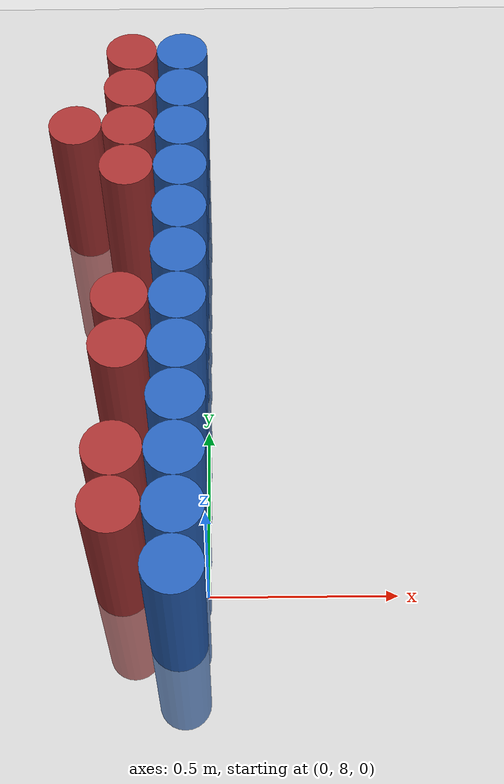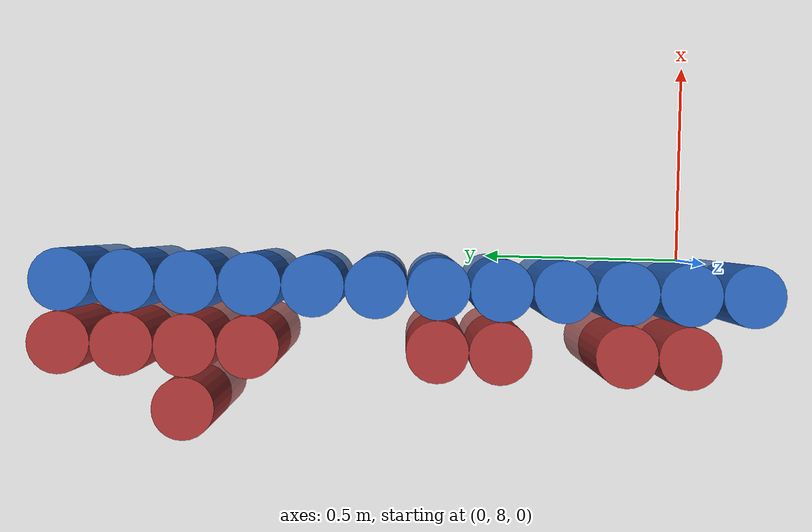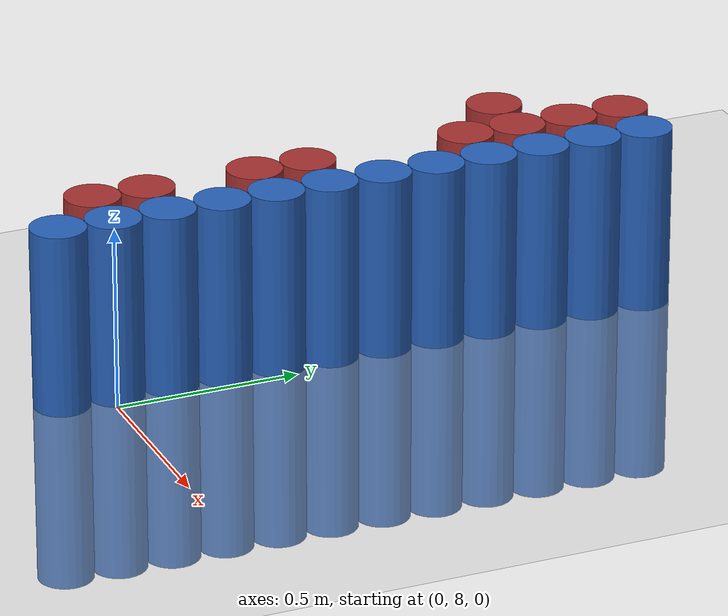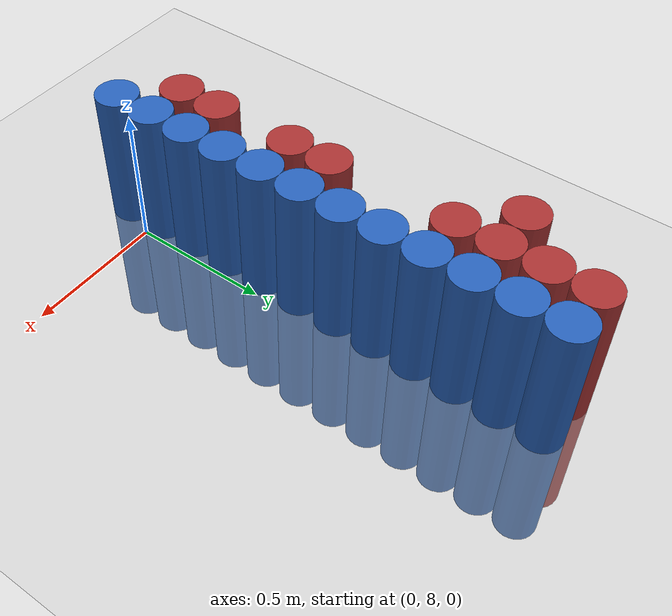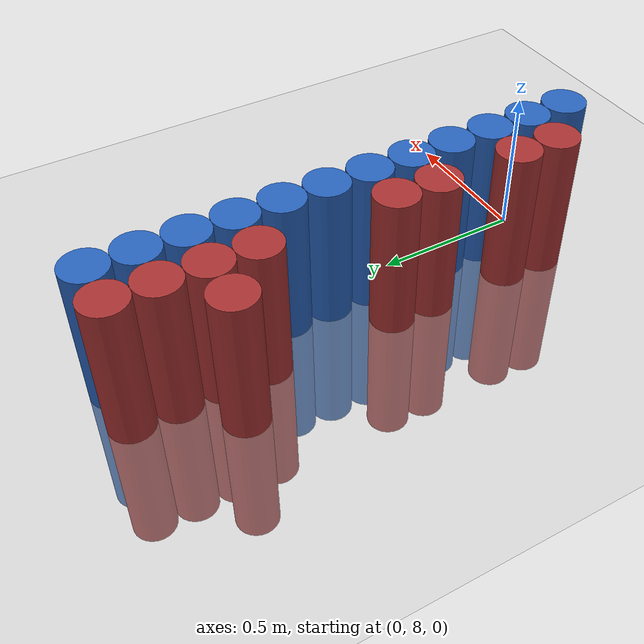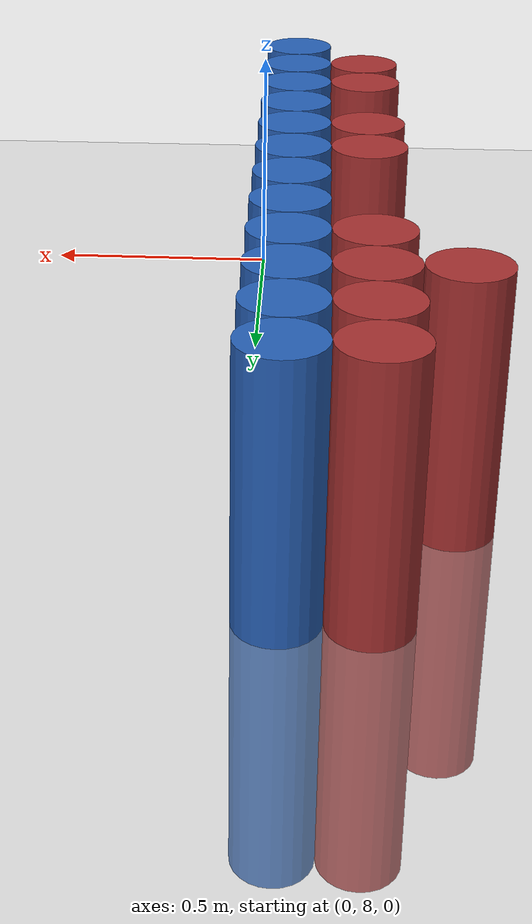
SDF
<sdf version="1.6">
 <world name="default">
  <model name="ground_plane">
   <static>1</static>
   <link name="link">
    <collision name="collision">
     <geometry><plane><normal>0 0 1</normal><size>100 100</size></plane></geometry>
     <surface><friction><ode><mu>100</mu><mu2>50</mu2></ode></friction></surface>
    </collision>
    <visual name="visual">
     <cast_shadows>0</cast_shadows>
     <geometry><plane><normal>0 0 1</normal><size>100 100</size></plane></geometry>
     <material>
      <script><uri>file://media/materials/scripts/gazebo.material</uri><name>Gazebo/Grey</name></script>
     </material>
    </visual>
   </link>
  </model>
  <model name="unit_cylinder_275">
   <static>1</static>
   <pose>-0.375000 9.225000 0.000000 0.000000 0.000000 0.000000</pose>
   <link name="link">
    <inertial>
     <mass>1</mass>
     <inertia><ixx>0.145833</ixx><ixy>0</ixy><ixz>0</ixz><iyy>0.145833</iyy><iyz>0</iyz><izz>0.125</izz></inertia>
    </inertial>
    <collision name="collision">
     <geometry><cylinder><radius>0.075000</radius><length>1</length></cylinder></geometry>
    </collision>
    <visual name="visual">
     <geometry><cylinder><radius>0.075000</radius><length>1</length></cylinder></geometry>
     <material>
      <ambient>0.648000 0.192000 0.192000 1</ambient>
      <diffuse>0.648000 0.192000 0.192000 1</diffuse>
     </material>
     <material>
      <script><name>Gazebo/Grey</name><uri>file://media/materials/scripts/gazebo.material</uri></script>
     </material>
    </visual>
    <sensor name="sensor_contact" type="contact"><contact><collision>collision</collision></contact></sensor>
   </link>
   <plugin filename="gz-sim-touchplugin-system" name="gz::sim::systems::TouchPlugin">
    <target>robot</target>
    <namespace>robot</namespace>
    <time>0.001</time>
    <enabled>true</enabled>
   </plugin>
  </model>
  <model name="unit_cylinder_287">
   <static>1</static>
   <pose>-0.225000 8.025000 0.000000 0.000000 0.000000 0.000000</pose>
   <link name="link">
    <inertial>
     <mass>1</mass>
     <inertia><ixx>0.145833</ixx><ixy>0</ixy><ixz>0</ixz><iyy>0.145833</iyy><iyz>0</iyz><izz>0.125</izz></inertia>
    </inertial>
    <collision name="collision">
     <geometry><cylinder><radius>0.075000</radius><length>1</length></cylinder></geometry>
    </collision>
    <visual name="visual">
     <geometry><cylinder><radius>0.075000</radius><length>1</length></cylinder></geometry>
     <material>
      <ambient>0.648000 0.192000 0.192000 1</ambient>
      <diffuse>0.648000 0.192000 0.192000 1</diffuse>
     </material>
     <material>
      <script><name>Gazebo/Grey</name><uri>file://media/materials/scripts/gazebo.material</uri></script>
     </material>
    </visual>
    <sensor name="sensor_contact" type="contact"><contact><collision>collision</collision></contact></sensor>
   </link>
   <plugin filename="gz-sim-touchplugin-system" name="gz::sim::systems::TouchPlugin">
    <target>robot</target>
    <namespace>robot</namespace>
    <time>0.001</time>
    <enabled>true</enabled>
   </plugin>
  </model>
  <model name="unit_cylinder_288">
   <static>1</static>
   <pose>-0.225000 8.175000 0.000000 0.000000 0.000000 0.000000</pose>
   <link name="link">
    <inertial>
     <mass>1</mass>
     <inertia><ixx>0.145833</ixx><ixy>0</ixy><ixz>0</ixz><iyy>0.145833</iyy><iyz>0</iyz><izz>0.125</izz></inertia>
    </inertial>
    <collision name="collision">
     <geometry><cylinder><radius>0.075000</radius><length>1</length></cylinder></geometry>
    </collision>
    <visual name="visual">
     <geometry><cylinder><radius>0.075000</radius><length>1</length></cylinder></geometry>
     <material>
      <ambient>0.648000 0.192000 0.192000 1</ambient>
      <diffuse>0.648000 0.192000 0.192000 1</diffuse>
     </material>
     <material>
      <script><name>Gazebo/Grey</name><uri>file://media/materials/scripts/gazebo.material</uri></script>
     </material>
    </visual>
    <sensor name="sensor_contact" type="contact"><contact><collision>collision</collision></contact></sensor>
   </link>
   <plugin filename="gz-sim-touchplugin-system" name="gz::sim::systems::TouchPlugin">
    <target>robot</target>
    <namespace>robot</namespace>
    <time>0.001</time>
    <enabled>true</enabled>
   </plugin>
  </model>
  <model name="unit_cylinder_289">
   <static>1</static>
   <pose>-0.225000 8.475000 0.000000 0.000000 0.000000 0.000000</pose>
   <link name="link">
    <inertial>
     <mass>1</mass>
     <inertia><ixx>0.145833</ixx><ixy>0</ixy><ixz>0</ixz><iyy>0.145833</iyy><iyz>0</iyz><izz>0.125</izz></inertia>
    </inertial>
    <collision name="collision">
     <geometry><cylinder><radius>0.075000</radius><length>1</length></cylinder></geometry>
    </collision>
    <visual name="visual">
     <geometry><cylinder><radius>0.075000</radius><length>1</length></cylinder></geometry>
     <material>
      <ambient>0.648000 0.192000 0.192000 1</ambient>
      <diffuse>0.648000 0.192000 0.192000 1</diffuse>
     </material>
     <material>
      <script><name>Gazebo/Grey</name><uri>file://media/materials/scripts/gazebo.material</uri></script>
     </material>
    </visual>
    <sensor name="sensor_contact" type="contact"><contact><collision>collision</collision></contact></sensor>
   </link>
   <plugin filename="gz-sim-touchplugin-system" name="gz::sim::systems::TouchPlugin">
    <target>robot</target>
    <namespace>robot</namespace>
    <time>0.001</time>
    <enabled>true</enabled>
   </plugin>
  </model>
  <model name="unit_cylinder_290">
   <static>1</static>
   <pose>-0.225000 8.625000 0.000000 0.000000 0.000000 0.000000</pose>
   <link name="link">
    <inertial>
     <mass>1</mass>
     <inertia><ixx>0.145833</ixx><ixy>0</ixy><ixz>0</ixz><iyy>0.145833</iyy><iyz>0</iyz><izz>0.125</izz></inertia>
    </inertial>
    <collision name="collision">
     <geometry><cylinder><radius>0.075000</radius><length>1</length></cylinder></geometry>
    </collision>
    <visual name="visual">
     <geometry><cylinder><radius>0.075000</radius><length>1</length></cylinder></geometry>
     <material>
      <ambient>0.648000 0.192000 0.192000 1</ambient>
      <diffuse>0.648000 0.192000 0.192000 1</diffuse>
     </material>
     <material>
      <script><name>Gazebo/Grey</name><uri>file://media/materials/scripts/gazebo.material</uri></script>
     </material>
    </visual>
    <sensor name="sensor_contact" type="contact"><contact><collision>collision</collision></contact></sensor>
   </link>
   <plugin filename="gz-sim-touchplugin-system" name="gz::sim::systems::TouchPlugin">
    <target>robot</target>
    <namespace>robot</namespace>
    <time>0.001</time>
    <enabled>true</enabled>
   </plugin>
  </model>
  <model name="unit_cylinder_291">
   <static>1</static>
   <pose>-0.225000 9.075000 0.000000 0.000000 0.000000 0.000000</pose>
   <link name="link">
    <inertial>
     <mass>1</mass>
     <inertia><ixx>0.145833</ixx><ixy>0</ixy><ixz>0</ixz><iyy>0.145833</iyy><iyz>0</iyz><izz>0.125</izz></inertia>
    </inertial>
    <collision name="collision">
     <geometry><cylinder><radius>0.075000</radius><length>1</length></cylinder></geometry>
    </collision>
    <visual name="visual">
     <geometry><cylinder><radius>0.075000</radius><length>1</length></cylinder></geometry>
     <material>
      <ambient>0.648000 0.192000 0.192000 1</ambient>
      <diffuse>0.648000 0.192000 0.192000 1</diffuse>
     </material>
     <material>
      <script><name>Gazebo/Grey</name><uri>file://media/materials/scripts/gazebo.material</uri></script>
     </material>
    </visual>
    <sensor name="sensor_contact" type="contact"><contact><collision>collision</collision></contact></sensor>
   </link>
   <plugin filename="gz-sim-touchplugin-system" name="gz::sim::systems::TouchPlugin">
    <target>robot</target>
    <namespace>robot</namespace>
    <time>0.001</time>
    <enabled>true</enabled>
   </plugin>
  </model>
  <model name="unit_cylinder_292">
   <static>1</static>
   <pose>-0.225000 9.225000 0.000000 0.000000 0.000000 0.000000</pose>
   <link name="link">
    <inertial>
     <mass>1</mass>
     <inertia><ixx>0.145833</ixx><ixy>0</ixy><ixz>0</ixz><iyy>0.145833</iyy><iyz>0</iyz><izz>0.125</izz></inertia>
    </inertial>
    <collision name="collision">
     <geometry><cylinder><radius>0.075000</radius><length>1</length></cylinder></geometry>
    </collision>
    <visual name="visual">
     <geometry><cylinder><radius>0.075000</radius><length>1</length></cylinder></geometry>
     <material>
      <ambient>0.648000 0.192000 0.192000 1</ambient>
      <diffuse>0.648000 0.192000 0.192000 1</diffuse>
     </material>
     <material>
      <script><name>Gazebo/Grey</name><uri>file://media/materials/scripts/gazebo.material</uri></script>
     </material>
    </visual>
    <sensor name="sensor_contact" type="contact"><contact><collision>collision</collision></contact></sensor>
   </link>
   <plugin filename="gz-sim-touchplugin-system" name="gz::sim::systems::TouchPlugin">
    <target>robot</target>
    <namespace>robot</namespace>
    <time>0.001</time>
    <enabled>true</enabled>
   </plugin>
  </model>
  <model name="unit_cylinder_293">
   <static>1</static>
   <pose>-0.225000 9.375000 0.000000 0.000000 0.000000 0.000000</pose>
   <link name="link">
    <inertial>
     <mass>1</mass>
     <inertia><ixx>0.145833</ixx><ixy>0</ixy><ixz>0</ixz><iyy>0.145833</iyy><iyz>0</iyz><izz>0.125</izz></inertia>
    </inertial>
    <collision name="collision">
     <geometry><cylinder><radius>0.075000</radius><length>1</length></cylinder></geometry>
    </collision>
    <visual name="visual">
     <geometry><cylinder><radius>0.075000</radius><length>1</length></cylinder></geometry>
     <material>
      <ambient>0.648000 0.192000 0.192000 1</ambient>
      <diffuse>0.648000 0.192000 0.192000 1</diffuse>
     </material>
     <material>
      <script><name>Gazebo/Grey</name><uri>file://media/materials/scripts/gazebo.material</uri></script>
     </material>
    </visual>
    <sensor name="sensor_contact" type="contact"><contact><collision>collision</collision></contact></sensor>
   </link>
   <plugin filename="gz-sim-touchplugin-system" name="gz::sim::systems::TouchPlugin">
    <target>robot</target>
    <namespace>robot</namespace>
    <time>0.001</time>
    <enabled>true</enabled>
   </plugin>
  </model>
  <model name="unit_cylinder_294">
   <static>1</static>
   <pose>-0.225000 9.525000 0.000000 0.000000 0.000000 0.000000</pose>
   <link name="link">
    <inertial>
     <mass>1</mass>
     <inertia><ixx>0.145833</ixx><ixy>0</ixy><ixz>0</ixz><iyy>0.145833</iyy><iyz>0</iyz><izz>0.125</izz></inertia>
    </inertial>
    <collision name="collision">
     <geometry><cylinder><radius>0.075000</radius><length>1</length></cylinder></geometry>
    </collision>
    <visual name="visual">
     <geometry><cylinder><radius>0.075000</radius><length>1</length></cylinder></geometry>
     <material>
      <ambient>0.648000 0.192000 0.192000 1</ambient>
      <diffuse>0.648000 0.192000 0.192000 1</diffuse>
     </material>
     <material>
      <script><name>Gazebo/Grey</name><uri>file://media/materials/scripts/gazebo.material</uri></script>
     </material>
    </visual>
    <sensor name="sensor_contact" type="contact"><contact><collision>collision</collision></contact></sensor>
   </link>
   <plugin filename="gz-sim-touchplugin-system" name="gz::sim::systems::TouchPlugin">
    <target>robot</target>
    <namespace>robot</namespace>
    <time>0.001</time>
    <enabled>true</enabled>
   </plugin>
  </model>
  <model name="unit_cylinder_313">
   <static>1</static>
   <pose>-0.075000 7.875000 0.000000 0.000000 0.000000 0.000000</pose>
   <link name="link">
    <inertial>
     <mass>1</mass>
     <inertia><ixx>0.145833</ixx><ixy>0</ixy><ixz>0</ixz><iyy>0.145833</iyy><iyz>0</iyz><izz>0.125</izz></inertia>
    </inertial>
    <collision name="collision">
     <geometry><cylinder><radius>0.075000</radius><length>1</length></cylinder></geometry>
    </collision>
    <visual name="visual">
     <geometry><cylinder><radius>0.075000</radius><length>1</length></cylinder></geometry>
     <material>
      <ambient>0.152000 0.379000 0.720000 1</ambient>
      <diffuse>0.152000 0.379000 0.720000 1</diffuse>
     </material>
     <material>
      <script><name>Gazebo/Grey</name><uri>file://media/materials/scripts/gazebo.material</uri></script>
     </material>
    </visual>
    <sensor name="sensor_contact" type="contact"><contact><collision>collision</collision></contact></sensor>
   </link>
   <plugin filename="gz-sim-touchplugin-system" name="gz::sim::systems::TouchPlugin">
    <target>robot</target>
    <namespace>robot</namespace>
    <time>0.001</time>
    <enabled>true</enabled>
   </plugin>
  </model>
  <model name="unit_cylinder_314">
   <static>1</static>
   <pose>-0.075000 8.025000 0.000000 0.000000 0.000000 0.000000</pose>
   <link name="link">
    <inertial>
     <mass>1</mass>
     <inertia><ixx>0.145833</ixx><ixy>0</ixy><ixz>0</ixz><iyy>0.145833</iyy><iyz>0</iyz><izz>0.125</izz></inertia>
    </inertial>
    <collision name="collision">
     <geometry><cylinder><radius>0.075000</radius><length>1</length></cylinder></geometry>
    </collision>
    <visual name="visual">
     <geometry><cylinder><radius>0.075000</radius><length>1</length></cylinder></geometry>
     <material>
      <ambient>0.152000 0.379000 0.720000 1</ambient>
      <diffuse>0.152000 0.379000 0.720000 1</diffuse>
     </material>
     <material>
      <script><name>Gazebo/Grey</name><uri>file://media/materials/scripts/gazebo.material</uri></script>
     </material>
    </visual>
    <sensor name="sensor_contact" type="contact"><contact><collision>collision</collision></contact></sensor>
   </link>
   <plugin filename="gz-sim-touchplugin-system" name="gz::sim::systems::TouchPlugin">
    <target>robot</target>
    <namespace>robot</namespace>
    <time>0.001</time>
    <enabled>true</enabled>
   </plugin>
  </model>
  <model name="unit_cylinder_315">
   <static>1</static>
   <pose>-0.075000 8.175000 0.000000 0.000000 0.000000 0.000000</pose>
   <link name="link">
    <inertial>
     <mass>1</mass>
     <inertia><ixx>0.145833</ixx><ixy>0</ixy><ixz>0</ixz><iyy>0.145833</iyy><iyz>0</iyz><izz>0.125</izz></inertia>
    </inertial>
    <collision name="collision">
     <geometry><cylinder><radius>0.075000</radius><length>1</length></cylinder></geometry>
    </collision>
    <visual name="visual">
     <geometry><cylinder><radius>0.075000</radius><length>1</length></cylinder></geometry>
     <material>
      <ambient>0.152000 0.379000 0.720000 1</ambient>
      <diffuse>0.152000 0.379000 0.720000 1</diffuse>
     </material>
     <material>
      <script><name>Gazebo/Grey</name><uri>file://media/materials/scripts/gazebo.material</uri></script>
     </material>
    </visual>
    <sensor name="sensor_contact" type="contact"><contact><collision>collision</collision></contact></sensor>
   </link>
   <plugin filename="gz-sim-touchplugin-system" name="gz::sim::systems::TouchPlugin">
    <target>robot</target>
    <namespace>robot</namespace>
    <time>0.001</time>
    <enabled>true</enabled>
   </plugin>
  </model>
  <model name="unit_cylinder_316">
   <static>1</static>
   <pose>-0.075000 8.325000 0.000000 0.000000 0.000000 0.000000</pose>
   <link name="link">
    <inertial>
     <mass>1</mass>
     <inertia><ixx>0.145833</ixx><ixy>0</ixy><ixz>0</ixz><iyy>0.145833</iyy><iyz>0</iyz><izz>0.125</izz></inertia>
    </inertial>
    <collision name="collision">
     <geometry><cylinder><radius>0.075000</radius><length>1</length></cylinder></geometry>
    </collision>
    <visual name="visual">
     <geometry><cylinder><radius>0.075000</radius><length>1</length></cylinder></geometry>
     <material>
      <ambient>0.152000 0.379000 0.720000 1</ambient>
      <diffuse>0.152000 0.379000 0.720000 1</diffuse>
     </material>
     <material>
      <script><name>Gazebo/Grey</name><uri>file://media/materials/scripts/gazebo.material</uri></script>
     </material>
    </visual>
    <sensor name="sensor_contact" type="contact"><contact><collision>collision</collision></contact></sensor>
   </link>
   <plugin filename="gz-sim-touchplugin-system" name="gz::sim::systems::TouchPlugin">
    <target>robot</target>
    <namespace>robot</namespace>
    <time>0.001</time>
    <enabled>true</enabled>
   </plugin>
  </model>
  <model name="unit_cylinder_317">
   <static>1</static>
   <pose>-0.075000 8.475000 0.000000 0.000000 0.000000 0.000000</pose>
   <link name="link">
    <inertial>
     <mass>1</mass>
     <inertia><ixx>0.145833</ixx><ixy>0</ixy><ixz>0</ixz><iyy>0.145833</iyy><iyz>0</iyz><izz>0.125</izz></inertia>
    </inertial>
    <collision name="collision">
     <geometry><cylinder><radius>0.075000</radius><length>1</length></cylinder></geometry>
    </collision>
    <visual name="visual">
     <geometry><cylinder><radius>0.075000</radius><length>1</length></cylinder></geometry>
     <material>
      <ambient>0.152000 0.379000 0.720000 1</ambient>
      <diffuse>0.152000 0.379000 0.720000 1</diffuse>
     </material>
     <material>
      <script><name>Gazebo/Grey</name><uri>file://media/materials/scripts/gazebo.material</uri></script>
     </material>
    </visual>
    <sensor name="sensor_contact" type="contact"><contact><collision>collision</collision></contact></sensor>
   </link>
   <plugin filename="gz-sim-touchplugin-system" name="gz::sim::systems::TouchPlugin">
    <target>robot</target>
    <namespace>robot</namespace>
    <time>0.001</time>
    <enabled>true</enabled>
   </plugin>
  </model>
  <model name="unit_cylinder_318">
   <static>1</static>
   <pose>-0.075000 8.625000 0.000000 0.000000 0.000000 0.000000</pose>
   <link name="link">
    <inertial>
     <mass>1</mass>
     <inertia><ixx>0.145833</ixx><ixy>0</ixy><ixz>0</ixz><iyy>0.145833</iyy><iyz>0</iyz><izz>0.125</izz></inertia>
    </inertial>
    <collision name="collision">
     <geometry><cylinder><radius>0.075000</radius><length>1</length></cylinder></geometry>
    </collision>
    <visual name="visual">
     <geometry><cylinder><radius>0.075000</radius><length>1</length></cylinder></geometry>
     <material>
      <ambient>0.152000 0.379000 0.720000 1</ambient>
      <diffuse>0.152000 0.379000 0.720000 1</diffuse>
     </material>
     <material>
      <script><name>Gazebo/Grey</name><uri>file://media/materials/scripts/gazebo.material</uri></script>
     </material>
    </visual>
    <sensor name="sensor_contact" type="contact"><contact><collision>collision</collision></contact></sensor>
   </link>
   <plugin filename="gz-sim-touchplugin-system" name="gz::sim::systems::TouchPlugin">
    <target>robot</target>
    <namespace>robot</namespace>
    <time>0.001</time>
    <enabled>true</enabled>
   </plugin>
  </model>
  <model name="unit_cylinder_319">
   <static>1</static>
   <pose>-0.075000 8.775000 0.000000 0.000000 0.000000 0.000000</pose>
   <link name="link">
    <inertial>
     <mass>1</mass>
     <inertia><ixx>0.145833</ixx><ixy>0</ixy><ixz>0</ixz><iyy>0.145833</iyy><iyz>0</iyz><izz>0.125</izz></inertia>
    </inertial>
    <collision name="collision">
     <geometry><cylinder><radius>0.075000</radius><length>1</length></cylinder></geometry>
    </collision>
    <visual name="visual">
     <geometry><cylinder><radius>0.075000</radius><length>1</length></cylinder></geometry>
     <material>
      <ambient>0.152000 0.379000 0.720000 1</ambient>
      <diffuse>0.152000 0.379000 0.720000 1</diffuse>
     </material>
     <material>
      <script><name>Gazebo/Grey</name><uri>file://media/materials/scripts/gazebo.material</uri></script>
     </material>
    </visual>
    <sensor name="sensor_contact" type="contact"><contact><collision>collision</collision></contact></sensor>
   </link>
   <plugin filename="gz-sim-touchplugin-system" name="gz::sim::systems::TouchPlugin">
    <target>robot</target>
    <namespace>robot</namespace>
    <time>0.001</time>
    <enabled>true</enabled>
   </plugin>
  </model>
  <model name="unit_cylinder_320">
   <static>1</static>
   <pose>-0.075000 8.925000 0.000000 0.000000 0.000000 0.000000</pose>
   <link name="link">
    <inertial>
     <mass>1</mass>
     <inertia><ixx>0.145833</ixx><ixy>0</ixy><ixz>0</ixz><iyy>0.145833</iyy><iyz>0</iyz><izz>0.125</izz></inertia>
    </inertial>
    <collision name="collision">
     <geometry><cylinder><radius>0.075000</radius><length>1</length></cylinder></geometry>
    </collision>
    <visual name="visual">
     <geometry><cylinder><radius>0.075000</radius><length>1</length></cylinder></geometry>
     <material>
      <ambient>0.152000 0.379000 0.720000 1</ambient>
      <diffuse>0.152000 0.379000 0.720000 1</diffuse>
     </material>
     <material>
      <script><name>Gazebo/Grey</name><uri>file://media/materials/scripts/gazebo.material</uri></script>
     </material>
    </visual>
    <sensor name="sensor_contact" type="contact"><contact><collision>collision</collision></contact></sensor>
   </link>
   <plugin filename="gz-sim-touchplugin-system" name="gz::sim::systems::TouchPlugin">
    <target>robot</target>
    <namespace>robot</namespace>
    <time>0.001</time>
    <enabled>true</enabled>
   </plugin>
  </model>
  <model name="unit_cylinder_321">
   <static>1</static>
   <pose>-0.075000 9.075000 0.000000 0.000000 0.000000 0.000000</pose>
   <link name="link">
    <inertial>
     <mass>1</mass>
     <inertia><ixx>0.145833</ixx><ixy>0</ixy><ixz>0</ixz><iyy>0.145833</iyy><iyz>0</iyz><izz>0.125</izz></inertia>
    </inertial>
    <collision name="collision">
     <geometry><cylinder><radius>0.075000</radius><length>1</length></cylinder></geometry>
    </collision>
    <visual name="visual">
     <geometry><cylinder><radius>0.075000</radius><length>1</length></cylinder></geometry>
     <material>
      <ambient>0.152000 0.379000 0.720000 1</ambient>
      <diffuse>0.152000 0.379000 0.720000 1</diffuse>
     </material>
     <material>
      <script><name>Gazebo/Grey</name><uri>file://media/materials/scripts/gazebo.material</uri></script>
     </material>
    </visual>
    <sensor name="sensor_contact" type="contact"><contact><collision>collision</collision></contact></sensor>
   </link>
   <plugin filename="gz-sim-touchplugin-system" name="gz::sim::systems::TouchPlugin">
    <target>robot</target>
    <namespace>robot</namespace>
    <time>0.001</time>
    <enabled>true</enabled>
   </plugin>
  </model>
  <model name="unit_cylinder_322">
   <static>1</static>
   <pose>-0.075000 9.225000 0.000000 0.000000 0.000000 0.000000</pose>
   <link name="link">
    <inertial>
     <mass>1</mass>
     <inertia><ixx>0.145833</ixx><ixy>0</ixy><ixz>0</ixz><iyy>0.145833</iyy><iyz>0</iyz><izz>0.125</izz></inertia>
    </inertial>
    <collision name="collision">
     <geometry><cylinder><radius>0.075000</radius><length>1</length></cylinder></geometry>
    </collision>
    <visual name="visual">
     <geometry><cylinder><radius>0.075000</radius><length>1</length></cylinder></geometry>
     <material>
      <ambient>0.152000 0.379000 0.720000 1</ambient>
      <diffuse>0.152000 0.379000 0.720000 1</diffuse>
     </material>
     <material>
      <script><name>Gazebo/Grey</name><uri>file://media/materials/scripts/gazebo.material</uri></script>
     </material>
    </visual>
    <sensor name="sensor_contact" type="contact"><contact><collision>collision</collision></contact></sensor>
   </link>
   <plugin filename="gz-sim-touchplugin-system" name="gz::sim::systems::TouchPlugin">
    <target>robot</target>
    <namespace>robot</namespace>
    <time>0.001</time>
    <enabled>true</enabled>
   </plugin>
  </model>
  <model name="unit_cylinder_323">
   <static>1</static>
   <pose>-0.075000 9.375000 0.000000 0.000000 0.000000 0.000000</pose>
   <link name="link">
    <inertial>
     <mass>1</mass>
     <inertia><ixx>0.145833</ixx><ixy>0</ixy><ixz>0</ixz><iyy>0.145833</iyy><iyz>0</iyz><izz>0.125</izz></inertia>
    </inertial>
    <collision name="collision">
     <geometry><cylinder><radius>0.075000</radius><length>1</length></cylinder></geometry>
    </collision>
    <visual name="visual">
     <geometry><cylinder><radius>0.075000</radius><length>1</length></cylinder></geometry>
     <material>
      <ambient>0.152000 0.379000 0.720000 1</ambient>
      <diffuse>0.152000 0.379000 0.720000 1</diffuse>
     </material>
     <material>
      <script><name>Gazebo/Grey</name><uri>file://media/materials/scripts/gazebo.material</uri></script>
     </material>
    </visual>
    <sensor name="sensor_contact" type="contact"><contact><collision>collision</collision></contact></sensor>
   </link>
   <plugin filename="gz-sim-touchplugin-system" name="gz::sim::systems::TouchPlugin">
    <target>robot</target>
    <namespace>robot</namespace>
    <time>0.001</time>
    <enabled>true</enabled>
   </plugin>
  </model>
  <model name="unit_cylinder_324">
   <static>1</static>
   <pose>-0.075000 9.525000 0.000000 0.000000 0.000000 0.000000</pose>
   <link name="link">
    <inertial>
     <mass>1</mass>
     <inertia><ixx>0.145833</ixx><ixy>0</ixy><ixz>0</ixz><iyy>0.145833</iyy><iyz>0</iyz><izz>0.125</izz></inertia>
    </inertial>
    <collision name="collision">
     <geometry><cylinder><radius>0.075000</radius><length>1</length></cylinder></geometry>
    </collision>
    <visual name="visual">
     <geometry><cylinder><radius>0.075000</radius><length>1</length></cylinder></geometry>
     <material>
      <ambient>0.152000 0.379000 0.720000 1</ambient>
      <diffuse>0.152000 0.379000 0.720000 1</diffuse>
     </material>
     <material>
      <script><name>Gazebo/Grey</name><uri>file://media/materials/scripts/gazebo.material</uri></script>
     </material>
    </visual>
    <sensor name="sensor_contact" type="contact"><contact><collision>collision</collision></contact></sensor>
   </link>
   <plugin filename="gz-sim-touchplugin-system" name="gz::sim::systems::TouchPlugin">
    <target>robot</target>
    <namespace>robot</namespace>
    <time>0.001</time>
    <enabled>true</enabled>
   </plugin>
  </model>
 </world>
</sdf>
